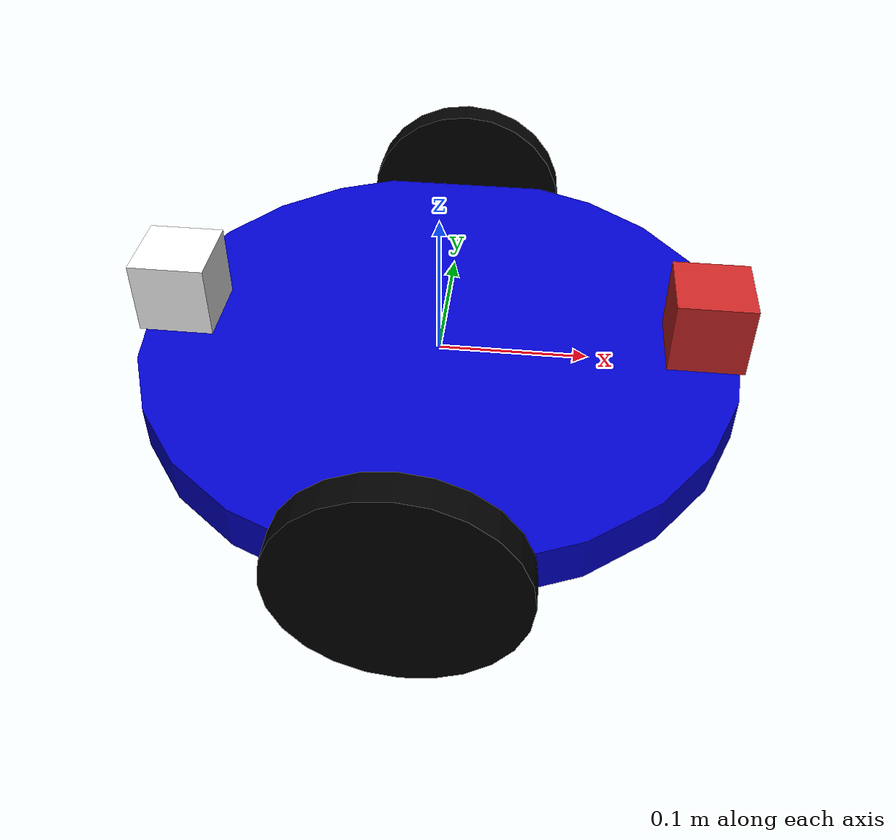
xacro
<?xml version="1.0"?>
<robot name="diff_robot" xmlns:xacro="http://www.ros.org/wiki/xacro">

<!-- Definovanie materiálov -->
<material name="Black">
	<color rgba="0.0 0.0 0.0 1.0"/>
</material>

<material name="Blue">
	<color rgba="0.0 0.0 0.8 1.0"/>
</material>

<material name="Red">
	<color rgba="0.8 0.0 0.0 1.0"/>
</material>

<material name="White">
	<color rgba="1.0 1.0 1.0 1.0"/>
</material>

<!-- zadefinovanie premených -->
<xacro:property name="base_radius" value="0.2"/>
<xacro:property name="base_length" value="0.03"/>
<xacro:property name="base_mass"   value="5"/>

<xacro:property name="PI_2"         value="1.57079632679"/>
<xacro:property name="wheel_radius" value="0.075"/>
<xacro:property name="wheel_length" value="0.02"/>
<xacro:property name="wheel_mass"   value="1.5"/>

<xacro:property name="caster_radius" value="0.03"/>
<xacro:property name="caster_mass"   value="0.2"/>

<xacro:property name="sensor_size" value="0.05"/>

<xacro:property name="camera_size" value="0.05"/>

<!-- Makrá pre výpočet zotrvačnosti válca a gule -->
<xacro:macro name="cylinder_inertia"        params="m r h">
	<inertia  ixx="${m*(3*r*r+h*h)/12}" ixy = "0" ixz = "0"
                  iyy="${m*(3*r*r+h*h)/12}" iyz = "0"
                  izz="${m*r*r/2}" />
</xacro:macro>
<xacro:macro name="sphere_inertia"   params="m r">
	<inertia  ixx="${2*m*r*r/5}" ixy = "0" ixz = "0"
                  iyy="${2*m*r*r/5}" iyz = "0"
                  izz="${2*m*r*r/5}" />
</xacro:macro>

<!-- ZOZNAM LINKOV -->

<!-- nastavenie vlastností stopy základne -->
 <link name="base_footprint">
 <visual>
 <origin rpy="0 0 0" xyz="0 0 0"/>
 <geometry>
 <box size="0.001 0.001 0.001"/>
 </geometry>
 </visual>
 </link>

<!-- nastavenie vlastností základne -->
<link name="base_link">
	<visual>
		<geometry>
			<cylinder length="${base_length}" radius="${base_radius}"/>
		</geometry>

		<origin rpy="0 0 0" xyz="0 0 0"/>
		<material name="Blue"/>
	</visual>
	<collision>
		<geometry>
			<cylinder length="${base_length}" radius="${base_radius}"/>
		</geometry>
		<origin rpy="0 0 0" xyz="0 0 0"/>
	</collision>
	<inertial>
		<mass value="${base_mass}"/>
		<origin xyz="0 0 0"/>
		<cylinder_inertia  m="${base_mass}" r="${base_radius}" h="${base_length}" />
	</inertial>
</link>

<!-- nastavenie vlastností ľavého kolesa -->
<link name="left_wheel_link">
	<visual>
		<geometry>
			<cylinder length="${wheel_length}" radius="${wheel_radius}"/>
		</geometry>

		<origin rpy="${PI_2} 0 0" xyz="0 0 0"/>
		<material name="Black"/>
	</visual>
	<collision>
		<geometry>
			<cylinder length="${wheel_length}" radius="${wheel_radius}"/>
		</geometry>
		<origin rpy="${PI_2} 0 0" xyz="0 0 0"/>
	</collision>
	<inertial>
		<mass value="${wheel_mass}"/>
		<origin xyz="0 0 0"/>
		<cylinder_inertia  m="${wheel_mass}" r="${wheel_radius}" h="${wheel_length}" />
	</inertial>
</link>

<!-- nastavenie vlastností pravého kolesa -->
<link name="right_wheel_link">
	<visual>
		<geometry>
			<cylinder length="${wheel_length}" radius="${wheel_radius}"/>
		</geometry>

		<origin rpy="${PI_2} 0 0" xyz="0 0 0"/>
		<material name="Black"/>
	</visual>
	<collision>
		<geometry>
			<cylinder length="${wheel_length}" radius="${wheel_radius}"/>
		</geometry>
		<origin rpy="${PI_2} 0 0" xyz="0 0 0"/>
	</collision>
	<inertial>
		<mass value="${wheel_mass}"/>
		<origin xyz="0 0 0"/>
		<cylinder_inertia  m="${wheel_mass}" r="${wheel_radius}" h="${wheel_length}" />
	</inertial>
</link>

<!-- nastavenie vlastností predného pomocného kolieska -->
<link name="front_caster_link">
	<visual>
		<geometry>
			<sphere radius="${caster_radius}"/>
		</geometry>
		<origin rpy="${-PI_2} 3.1416 0" xyz="0 0 0"/>
		<material name="Black"/>
	</visual>
	<collision>
		<geometry>
			<sphere radius="${caster_radius}"/>
		</geometry>
		<origin rpy="${-PI_2} 3.1416 0" xyz="0 0 0"/>
	</collision>
	<inertial>
		<mass value="${caster_mass}"/>
		<origin xyz="0 0 0"/>
		<sphere_inertia  m="${caster_mass}" r="${caster_radius}" />
	</inertial>
</link>

<!-- nastavenie vlastností zadného pomocného kolieska -->
<link name="back_caster_link">
	<visual>
		<geometry>
			<sphere radius="${caster_radius}"/>
		</geometry>
		<origin rpy="${-PI_2} 3.1416 0" xyz="0 0 0"/>
		<material name="Black"/>
	</visual>
	<collision>
		<geometry>
			<sphere radius="${caster_radius}"/>
		</geometry>
		<origin rpy="${-PI_2} 3.1416 0" xyz="0 0 0"/>
	</collision>
	<inertial>
		<mass value="${caster_mass}"/>
		<origin xyz="0 0 0"/>
		<sphere_inertia  m="${caster_mass}" r="${caster_radius}" />
	</inertial>

</link>

<!-- nastavenie vlastností laserového senzora -->
<link name="hokuyo_link">
	<visual>
		<geometry>
			<box size="${sensor_size} ${sensor_size} ${sensor_size}"/>
		</geometry>
		<origin xyz="0 0 0" rpy="0 0 0" />
		<maretial name="Red"/>
	</visual>
	<collision>
		<geometry>
			<box size="${sensor_size} ${sensor_size} ${sensor_size}"/>
		</geometry>
		<origin xyz="0 0 0" rpy="0 0 0" />
	</collision>
	<material name="Red"/>

</link>
<!-- nastavenie vlastností kamery-->
<link name="left_camera_frame">
    <visual>
      <origin xyz="0 0 0" rpy="0 0 0" />
      <geometry>
        <box size="${camera_size} ${camera_size} ${camera_size}"/>
      </geometry>
      <material name="White"/>
    </visual>
</link>
<!-- JOINT LIST-->

<!-- nastavenie vlastností kĺbu,ktorý sa nachádza medzi stopou základne a základňou-->
<joint name="base_footprint_joint" type="fixed"> <!--FIXED- kĺb sa neotáča -->
 <origin rpy="0 0 0" xyz="0 0 0"/>
 <parent link="base_footprint"/>
 <child link="base_link"/>
 </joint>

<!-- nastavenie vlastností kĺbu,ktorý sa nachádza medzi ľavým kolesom a základňou-->
<joint name="left_wheel_joint" type="continuous">  <!--CONTINUOUS- pre neobmedzené otáčanie -->
	<parent link="base_link"/>
	<child link="left_wheel_link"/>
	<origin rpy="0 0 0" xyz="0 -0.2 0"/>
	<axis xyz="0 1 0" rpy="0  0"/>
	<limit effort="100" velocity="100" />
	<dynamics damping="0.0" friction="0.0"/>
</joint>

<!-- nastavenie vlastností kĺbu,ktorý sa nachádza medzi pravým kolesom a základňou-->
<joint name="right_wheel_joint" type="continuous">
	<parent link="base_link"/>
	<child link="right_wheel_link"/>
	<origin rpy="0 0 0" xyz="0 0.2 0"/>
	<axis  xyz="0 1 0" rpy="0  0"/>
        <limit effort="100" velocity="100" />
	<dynamics damping="0.0" friction="0.0"/>
</joint>

<!-- nastavenie vlastností kĺbu,ktorý sa nachádza medzi predným kolieskom a základňou-->
<joint name="front_caster_joint" type="fixed">
	<parent link="base_link"/>
	<child link="front_caster_link"/>
	<origin rpy="0 0 0" xyz="0.15 0 -0.044"  />
</joint>

<!-- nastavenie vlastností kĺbu,ktorý sa nachádza medzi zadným kolieskom a základňou-->
<joint name="back_caster_joint" type="fixed">
	<parent link="base_link"/>
	<child link="back_caster_link"/>
	<origin rpy="0 0 0" xyz="-0.15 0 -0.044"  />
</joint>

<!-- nastavenie vlastností kĺbu,ktorý sa nachádza medzi laserovým senzorom a základňou-->
<joint name="hokuyo_joint" type="fixed">
	<parent link="base_link"/>
	<child link="hokuyo_link" />
        <origin xyz="${base_radius-sensor_size/2} 0 ${base_length/2+sensor_size/2}" rpy="0 0 0" />
</joint>

<!-- nastavenie vlastností kĺbu,ktorý sa nachádza medzi kamerou a základňou-->
<joint name="left_camera_frame_joint" type="fixed">
    <origin xyz="${-base_radius+camera_size/2} 0 ${base_length+camera_size/4}" rpy="0 0 3.14" />
    <parent link="base_link"/>
    <child link="left_camera_frame" />
</joint>

<!-- GAZEBO LIST-->

<!-- nastavenie vlastností pre načítanie stopy základne v Gazebe-->
<gazebo reference="base_footprint">
    <turnGravityOff>false</turnGravityOff>
</gazebo>

<!-- nastavenie vlastností pre načítanie základne v Gazebe-->
<gazebo reference="base_link">
	<turnGravityOff>false</turnGravityOff>
	<material>Gazebo/Blue</material>

</gazebo>

<!-- nastavenie vlastností pre načítanie ľavého kolesa v Gazebe-->
<gazebo reference="left_wheel_link">
	<turnGravityOff>false</turnGravityOff>
	<material>Gazebo/Black</material>
	<mu1 value="1.0"/>
	<mu2 value="1.0"/>
	<kp value="10000000.0"/>
	<kd value="1.0"/>
	<fdir1 value="1 0 0"/>

</gazebo>

<!-- nastavenie vlastností pre načítanie pravého kolesa v Gazebe-->
<gazebo reference="right_wheel_link">
	<turnGravityOff>false</turnGravityOff>
	<material>Gazebo/Black</material>
	<mu1 value="1.0"/>
	<mu2 value="1.0"/>
	<kp value="10000000.0"/>
	<kd value="1.0"/>
	<fdir1 value="1 0 0"/>
</gazebo>

<!-- nastavenie vlastností pre načítanie predného kolieska v Gazebe-->
<gazebo reference="front_caster_link">
	<turnGravityOff>false</turnGravityOff>
	<material>Gazebo/Black</material>
</gazebo>

<!-- nastavenie vlastností pre načítanie zadného kolieska v Gazebe-->
<gazebo reference="back_caster_link">
	<turnGravityOff>false</turnGravityOff>
	<material>Gazebo/Black</material>
</gazebo>

<!-- nastavenie vlastností pre načítanie senzora a jeho pluginu v Gazebe-->
<gazebo reference="hokuyo_link">
    <sensor type="ray" name="head_hokuyo_sensor">
       <pose>0 0 0 0 0 0</pose>
      <visualize>false</visualize>
      <update_rate>40</update_rate>
      <ray>
        <scan>
          <horizontal>
            <samples>720</samples>
            <resolution>1</resolution>
            <min_angle>-1.57079632679</min_angle>
            <max_angle>1.57079632679</max_angle>
          </horizontal>
        </scan>
        <range>
          <min>0.10</min>
          <max>10.0</max>
          <resolution>0.001</resolution>
        </range>
      </ray>
      <plugin name="gazebo_ros_head_hokuyo_controller" filename="libgazebo_ros_laser.so">
        <topicName>/scan</topicName>
        <frameName>hokuyo_link</frameName>
      </plugin>
    </sensor>
    <material>Gazebo/Red</material>
</gazebo>

<!-- nastavenie vlastností pre načítanie kamery a jeho pluginu v Gazebe-->
<gazebo reference="left_camera_frame">
    <sensor type="multicamera" name="stereo_camera">
      <update_rate>30.0</update_rate>
      <camera name="left">
        <material>Gazebo/White</material>
        <horizontal_fov>1.3962634</horizontal_fov>
        <image>
          <width>800</width>
          <height>800</height>
          <format>R8G8B8</format>
        </image>
        <clip>
          <near>0.02</near>
          <far>300</far>
        </clip>
        <noise>
          <type>gaussian</type>
          <mean>0.0</mean>
          <stddev>0.007</stddev>
        </noise>
      </camera>
      <camera name="right">
        <pose>0 -0.07 0 0 0 0</pose>
        <horizontal_fov>1.3962634</horizontal_fov>
        <image>
          <width>800</width>
          <height>800</height>
          <format>R8G8B8</format>
        </image>
        <clip>
          <near>0.02</near>
          <far>300</far>
        </clip>
        <noise>
          <type>gaussian</type>
          <mean>0.0</mean>
          <stddev>0.007</stddev>
        </noise>
      </camera>
      <plugin name="stereo_camera_controller" filename="libgazebo_ros_multicamera.so">
        <alwaysOn>true</alwaysOn>
        <updateRate>0.0</updateRate>
        <cameraName>multisense_sl/camera</cameraName>
        <imageTopicName>image_raw</imageTopicName>
        <cameraInfoTopicName>camera_info</cameraInfoTopicName>
        <frameName>left_camera_optical_frame</frameName>
        <hackBaseline>0.07</hackBaseline>
        <distortionK1>0.0</distortionK1>
        <distortionK2>0.0</distortionK2>
        <distortionK3>0.0</distortionK3>
        <distortionT1>0.0</distortionT1>
        <distortionT2>0.0</distortionT2>
      </plugin>
    </sensor>
</gazebo>

<!-- nastavenie vlastností pre načítanie pluginu kontroléra diferenciálneho podvozku v Gazebe-->
<gazebo>
 <plugin name="differential_drive_controller" filename="libgazebo_ros_diff_drive.so">
 <alwaysOn>true</alwaysOn>
 <rosDebugLevel>Debug</rosDebugLevel>
 <publishWheelTF>true</publishWheelTF>
 <robotNamespace>/</robotNamespace>
 <publishTf>1</publishTf>
 <publishWheelJointState>false</publishWheelJointState>
 <updateRate>50</updateRate>
 <leftJoint>left_wheel_joint</leftJoint>
 <rightJoint>right_wheel_joint</rightJoint>
 <wheelSeparation>${2*base_radius}</wheelSeparation>
 <wheelDiameter>${2*wheel_radius}</wheelDiameter>
 <broadcastTF>1</broadcastTF>
 <wheelTorque>18</wheelTorque>
 <wheelAcceleration>2.5</wheelAcceleration>
 <commandTopic>cmd_vel</commandTopic>
 <odometryFrame>odom</odometryFrame>
 <odometryTopic>odom</odometryTopic>
 <robotBaseFrame>base_footprint</robotBaseFrame>
 <legacyMode>true</legacyMode>
 <odometrysource>1</odometrysource>
 </plugin>
</gazebo>
<!-- LIST PREVODOV-->

<transmission name="left_wheel_joint_trans">
<type>transmission_interface/SimpleTransmission</type>
<joint name="left_wheel_joint">
<hardwareInterface>EffortJointInterface</hardwareInterface>
</joint>
<actuator name="left_wheel_joint_motor">
<hardwareInterface>EffortJointInterface</hardwareInterface>
<mechanicalReduction>1</mechanicalReduction>
</actuator>
</transmission>

<transmission name="right_wheel_joint_trans">
<type>transmission_interface/SimpleTransmission</type>
<joint name="right_wheel_joint">
<hardwareInterface>EffortJointInterface</hardwareInterface>
</joint>
<actuator name="right_wheel_joint_motor">
<hardwareInterface>EffortJointInterface</hardwareInterface>
<mechanicalReduction>1</mechanicalReduction>
</actuator>
</transmission>

</robot>
